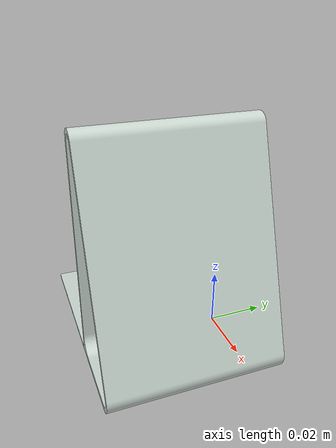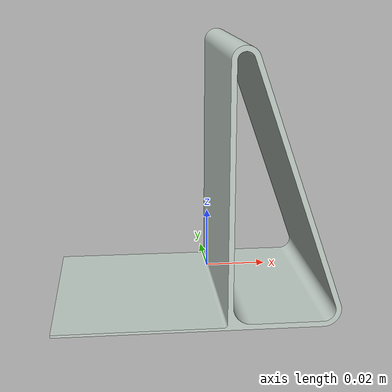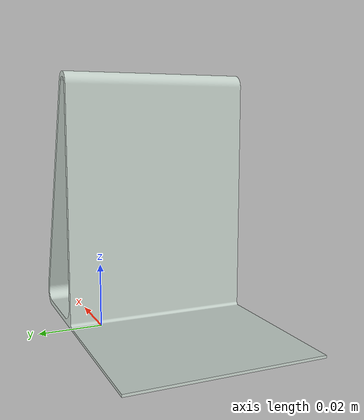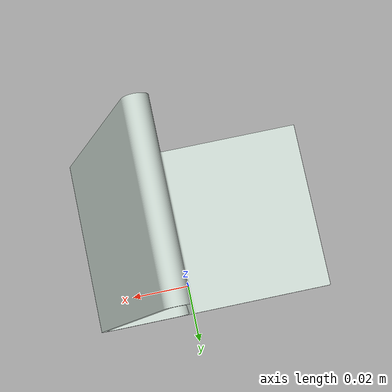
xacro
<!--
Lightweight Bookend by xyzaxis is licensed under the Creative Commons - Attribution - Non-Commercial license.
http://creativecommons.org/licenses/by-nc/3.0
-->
<?xml version="1.0" ?>
<robot name="lightweight_bookend_demo"
       xmlns:xacro="http://www.ros.org/wiki/xacro">

  <xacro:include filename="$(find tams_books_world)/urdf/lightweight_bookend.xacro" />

  <xacro:lightweight_bookend name="lightweight_bookend" yscale="3.0" />

</robot>

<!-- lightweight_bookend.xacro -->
<robot name="lightweight_bookend"
       xmlns:xacro="http://www.ros.org/wiki/xacro">

  <xacro:macro name="lightweight_bookend" params="name yscale" >
    <link name="${name}" >
      <inertial>
        <origin xyz="-0.012 0.01 0" rpy="1.571 0 0" />
        <mass value="0.3" />
        <inertia ixx="1" ixy="0" ixz="0" iyy="1" iyz="0" izz="1" />
      </inertial>
      <collision>
        <origin xyz="-0.012 0.01 0" rpy="0 0 0" />
        <geometry>
          <mesh filename="package://tams_books_world/meshes/bookends/lightweight_bookend.stl" scale="0.001 0.001 ${yscale*0.001}" />
        </geometry>
      </collision>
      <visual>
        <origin xyz="-0.012 0.01 0" rpy="1.571 0 0" />
        <material name="${name}/unused_material" >
          <color rgba="0.8 0.85 0.82 1.0" />
        </material>
        <geometry>
          <mesh filename="package://tams_books_world/meshes/bookends/lightweight_bookend.stl" scale="0.001 0.001 ${yscale*0.001}" />
        </geometry>
      </visual>
    </link>

    <gazebo reference="${name}">
       <!-- material/texture definition for Gazebo -->
       <turnGravityOff>false</turnGravityOff>
       <selfCollide>false</selfCollide>
       <mu1>1</mu1>
       <mu2>1</mu2>
       <kp>1000000.0</kp>
       <kd>10.0</kd>
     </gazebo>

  </xacro:macro>

</robot>
